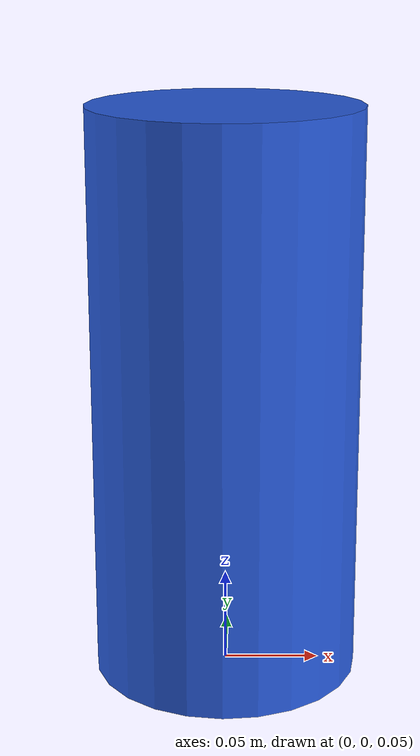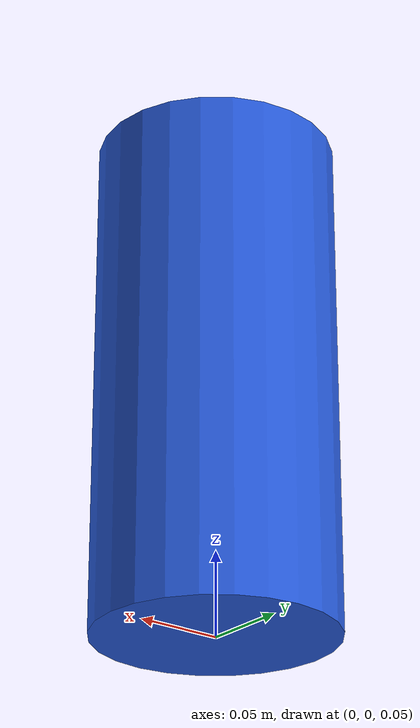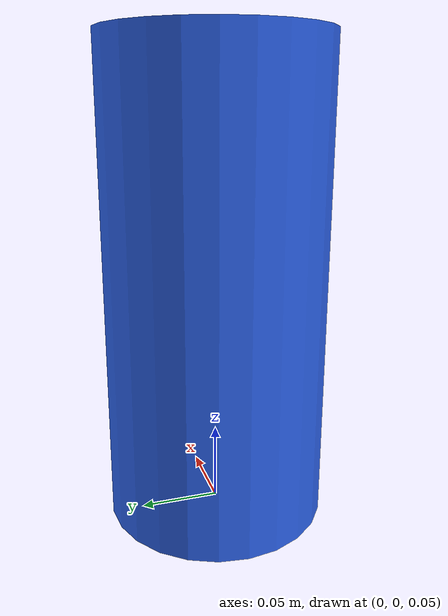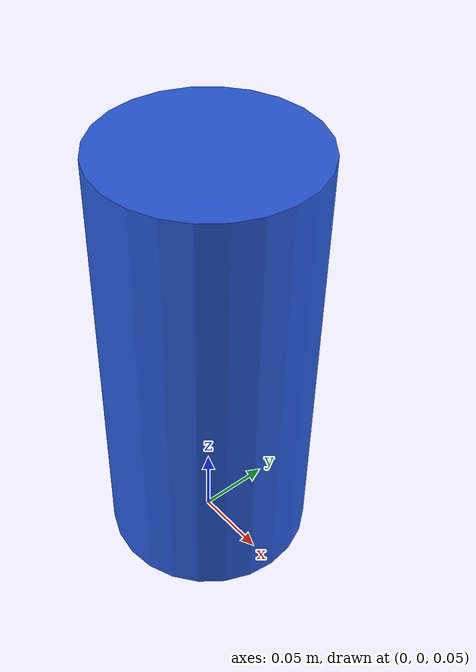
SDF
<?xml version="1.0"?>
<sdf version="1.7">
  <model name="blue_cylinder">
    <static>false</static>
    <pose>0 0 0.2 0 0 0</pose>
    <link name="link">
      <inertial>
        <mass>0.5</mass>
        <inertia>
          <ixx>0.006979</ixx>
          <ixy>0.0</ixy>
          <ixz>0.0</ixz>
          <iyy>0.006979</iyy>
          <iyz>0.0</iyz>
          <izz>0.000625</izz>
        </inertia>
      </inertial>
      <collision name="collision">
        <geometry>
          <cylinder>
            <radius>0.07</radius>
            <length>0.3</length>
          </cylinder>
        </geometry>
        <max_contacts>20</max_contacts>
        <surface>
          <friction>
            <ode>
              <mu>10.0</mu>
              <mu2>10.0</mu2>
            </ode>
            <torsional>
              <ode/>
            </torsional>
          </friction>
          <contact>
            <ode>
              <kp>100000.0</kp>
              <kd>10.0</kd>
              <max_vel>0.02</max_vel>
              <min_depth>0.001</min_depth>
            </ode>
          </contact>
          <bounce/>
        </surface>
      </collision>
      <visual name="visual">
        <geometry>
          <cylinder>
            <radius>0.07</radius>
            <length>0.3</length>
          </cylinder>
        </geometry>
        <material>
          <ambient>0.15 0.35 0.85 1</ambient>
          <diffuse>0.15 0.35 0.85 1</diffuse>
          <specular>0.1 0.1 0.1 1</specular>
        </material>
      </visual>
    </link>
  </model>
</sdf>
